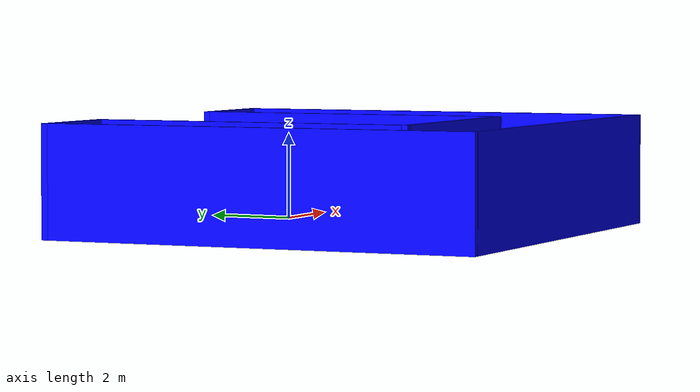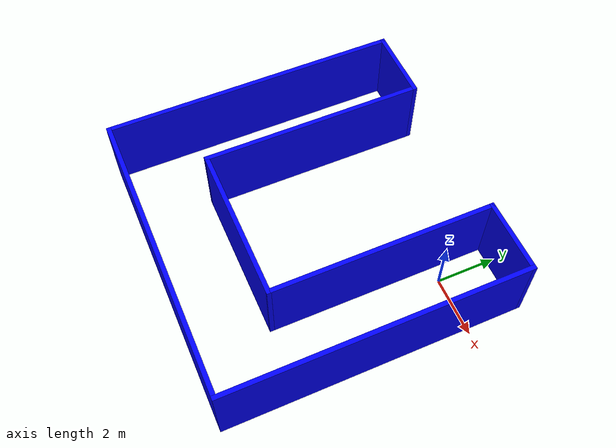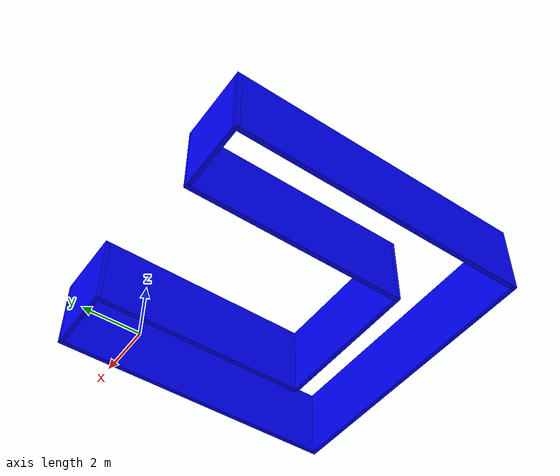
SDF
<?xml version='1.0'?>
<sdf version='1.6'>
  <model name='mybuilding'>
    <pose frame=''>-3.16908 -3.09923 0 0 -0 0</pose>
    <link name='Wall_12'>
      <collision name='Wall_12_Collision'>
        <geometry>
          <box>
            <size>2.50329 0.15 2.5</size>
          </box>
        </geometry>
        <pose frame=''>0 0 1.25 0 -0 0</pose>
      </collision>
      <visual name='Wall_12_Visual'>
        <pose frame=''>0 0 1.25 0 -0 0</pose>
        <geometry>
          <box>
            <size>2.50329 0.15 2.5</size>
          </box>
        </geometry>
        <material>
          <script>
            <uri>file://media/materials/scripts/gazebo.material</uri>
            <name>Gazebo/Grey</name>
          </script>
          <ambient>0 0 1 1</ambient>
        </material>
        <meta>
          <layer>0</layer>
        </meta>
      </visual>
      <pose frame=''>-3.74842 4.9245 0 0 -0 3.14136</pose>
    </link>
    <link name='Wall_13'>
      <collision name='Wall_13_Collision'>
        <geometry>
          <box>
            <size>10 0.15 2.5</size>
          </box>
        </geometry>
        <pose frame=''>0 0 1.25 0 -0 0</pose>
      </collision>
      <visual name='Wall_13_Visual'>
        <pose frame=''>0 0 1.25 0 -0 0</pose>
        <geometry>
          <box>
            <size>10 0.15 2.5</size>
          </box>
        </geometry>
        <material>
          <script>
            <uri>file://media/materials/scripts/gazebo.material</uri>
            <name>Gazebo/Grey</name>
          </script>
          <ambient>0 0 1 1</ambient>
        </material>
        <meta>
          <layer>0</layer>
        </meta>
      </visual>
      <pose frame=''>-4.92492 -0.00023 0 0 0 -1.5708</pose>
    </link>
    <link name='Wall_15'>
      <collision name='Wall_15_Collision'>
        <geometry>
          <box>
            <size>10 0.15 2.5</size>
          </box>
        </geometry>
        <pose frame=''>0 0 1.25 0 -0 0</pose>
      </collision>
      <visual name='Wall_15_Visual'>
        <pose frame=''>0 0 1.25 0 -0 0</pose>
        <geometry>
          <box>
            <size>10 0.15 2.5</size>
          </box>
        </geometry>
        <material>
          <script>
            <uri>file://media/materials/scripts/gazebo.material</uri>
            <name>Gazebo/Grey</name>
          </script>
          <ambient>0 0 1 1</ambient>
        </material>
        <meta>
          <layer>0</layer>
        </meta>
      </visual>
      <pose frame=''>8e-05 -4.925 0 0 -0 4.7e-05</pose>
    </link>
    <link name='Wall_17'>
      <collision name='Wall_17_Collision'>
        <geometry>
          <box>
            <size>10 0.15 2.5</size>
          </box>
        </geometry>
        <pose frame=''>0 0 1.25 0 -0 0</pose>
      </collision>
      <visual name='Wall_17_Visual'>
        <pose frame=''>0 0 1.25 0 -0 0</pose>
        <geometry>
          <box>
            <size>10 0.15 2.5</size>
          </box>
        </geometry>
        <material>
          <script>
            <uri>file://media/materials/scripts/gazebo.material</uri>
            <name>Gazebo/Grey</name>
          </script>
          <ambient>0 0 1 1</ambient>
        </material>
        <meta>
          <layer>0</layer>
        </meta>
      </visual>
      <pose frame=''>4.92508 0.000233 0 0 -0 1.5708</pose>
    </link>
    <link name='Wall_19'>
      <collision name='Wall_19_Collision'>
        <geometry>
          <box>
            <size>2.5 0.15 2.5</size>
          </box>
        </geometry>
        <pose frame=''>0 0 1.25 0 -0 0</pose>
      </collision>
      <visual name='Wall_19_Visual'>
        <pose frame=''>0 0 1.25 0 -0 0</pose>
        <geometry>
          <box>
            <size>2.5 0.15 2.5</size>
          </box>
        </geometry>
        <material>
          <script>
            <uri>file://media/materials/scripts/gazebo.material</uri>
            <name>Gazebo/Grey</name>
          </script>
          <ambient>0 0 1 1</ambient>
        </material>
        <meta>
          <layer>0</layer>
        </meta>
      </visual>
      <pose frame=''>3.75008 4.92523 0 0 -0 3.14159</pose>
    </link>
    <link name='Wall_21'>
      <collision name='Wall_21_Collision'>
        <geometry>
          <box>
            <size>7.5 0.15 2.5</size>
          </box>
        </geometry>
        <pose frame=''>0 0 1.25 0 -0 0</pose>
      </collision>
      <visual name='Wall_21_Visual'>
        <pose frame=''>0 0 1.25 0 -0 0</pose>
        <geometry>
          <box>
            <size>7.5 0.15 2.5</size>
          </box>
        </geometry>
        <material>
          <script>
            <uri>file://media/materials/scripts/gazebo.material</uri>
            <name>Gazebo/Grey</name>
          </script>
          <ambient>0 0 1 1</ambient>
        </material>
        <meta>
          <layer>0</layer>
        </meta>
      </visual>
      <pose frame=''>2.57508 1.25023 0 0 0 -1.5708</pose>
    </link>
    <link name='Wall_23'>
      <collision name='Wall_23_Collision'>
        <geometry>
          <box>
            <size>7.5 0.15 2.5</size>
          </box>
        </geometry>
        <pose frame=''>0 0 1.25 0 -0 0</pose>
      </collision>
      <visual name='Wall_23_Visual'>
        <pose frame=''>0 0 1.25 0 -0 0</pose>
        <geometry>
          <box>
            <size>7.5 0.15 2.5</size>
          </box>
        </geometry>
        <material>
          <script>
            <uri>file://media/materials/scripts/gazebo.material</uri>
            <name>Gazebo/Grey</name>
          </script>
          <ambient>0 0 1 1</ambient>
        </material>
        <meta>
          <layer>0</layer>
        </meta>
      </visual>
      <pose frame=''>-2.57192 1.24923 0 0 0 -1.5708</pose>
    </link>
    <link name='Wall_25'>
      <collision name='Wall_25_Collision'>
        <geometry>
          <box>
            <size>5.297 0.15 2.5</size>
          </box>
        </geometry>
        <pose frame=''>0 0 1.25 0 -0 0</pose>
      </collision>
      <visual name='Wall_25_Visual'>
        <pose frame=''>0 0 1.25 0 -0 0</pose>
        <geometry>
          <box>
            <size>5.297 0.15 2.5</size>
          </box>
        </geometry>
        <material>
          <script>
            <uri>file://media/materials/scripts/gazebo.material</uri>
            <name>Gazebo/Grey</name>
          </script>
          <ambient>0 0 1 1</ambient>
        </material>
        <meta>
          <layer>0</layer>
        </meta>
      </visual>
      <pose frame=''>0.00158 -2.42527 0 0 -0 0.000194</pose>
    </link>
    <static>1</static>
  </model>
</sdf>
